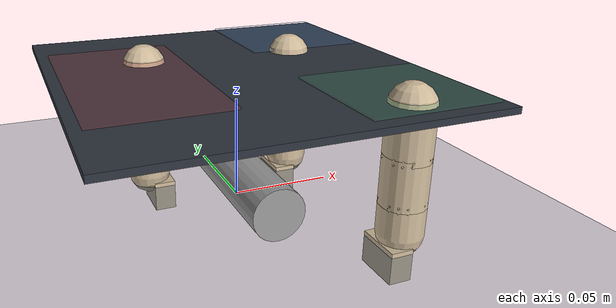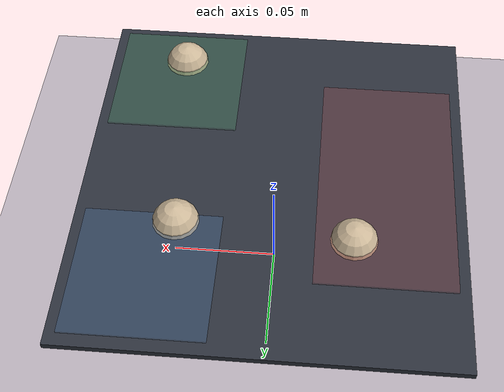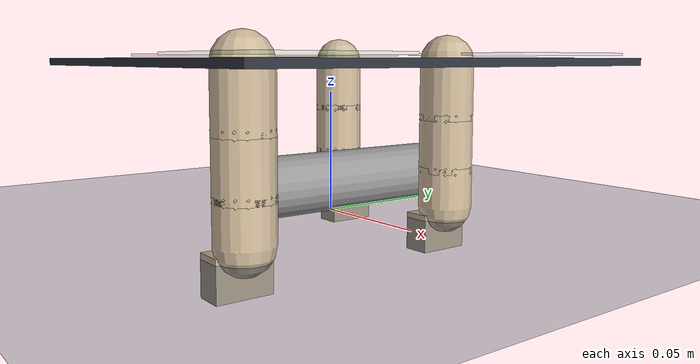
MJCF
<mujoco model="scene_tp0d0133p0d0316p0d0000_in0d0095n0d0280p0d0000_mn0d0017n0d0145p0d0000">
  <compiler angle="radian" autolimits="true" />
  <option timestep="0.002" gravity="0 0 -9.81" integrator="implicitfast" cone="elliptic" impratio="10" />
  <visual>
    <headlight ambient=".4 .4 .4" diffuse=".8 .8 .8" specular="0.1 0.1 0.1" />
    <map znear=".01" />
    <quality shadowsize="2048" />
    <global elevation="-15" />
  </visual>
  <default>
    <geom friction="1.8 0.15 0.01" solref="0.006 1" solimp="0.97 0.995 0.0005" />
    <motor ctrlrange="-1 1" ctrllimited="true" />
    <default class="pose">
      <joint damping="2.0" armature="0.01" />
      <position kp="4000" kv="100" forcerange="-1000 1000" />
    </default>
    <default class="ctrl">
      <joint type="hinge" damping="0.5" armature="0.001" frictionloss="0.0035" />
      <position kp="0.5" kv="0.02" gear="1" forcerange="-0.35 0.35" ctrlrange="-1 1" />
    </default>
  </default>
  <asset>
    <texture type="skybox" builtin="gradient" rgb1="0.3 0.5 0.7" rgb2="0 0 0" width="512" height="3072" />
    <texture type="2d" name="groundplane" builtin="checker" mark="edge" rgb1="0.2 0.3 0.4" rgb2="0.1 0.2 0.3" markrgb="0.8 0.8 0.8" width="300" height="300" />
    <material name="groundplane" texture="groundplane" texuniform="true" texrepeat="5 5" reflectance="0.2" />
    <texture name="grid" type="2d" builtin="checker" rgb1="0.15 0.15 0.15" rgb2="0.25 0.25 0.25" width="256" height="256" />
    <material name="table_mat" texture="grid" texrepeat="3 3" reflectance="0.2" />
    <material name="palm_mat" rgba="0.18 0.2 0.24 1" />
    <material name="finger_mat" rgba="0.8 0.72 0.6 1" />
    <material name="object_mat" rgba="0.6 0.6 0.6 1" />
  </asset>
  <worldbody>
    <light pos="0 0 1.5" dir="0 0 -1" directional="true" diffuse=".6 .6 .6" specular=".2 .2 .2" />
    <light pos="0.5 0.5 1.0" dir="-1 -1 -1" directional="true" diffuse=".4 .4 .4" specular=".1 .1 .1" />
    <geom name="floor" type="plane" size="1.5 1.5 0.1" material="groundplane" />
    <body name="screwdriver_medium" pos="0.0 0.0 0.0125" quat="0.70711 0.70711 0 0">
      <freejoint />
      <geom type="cylinder" size="0.0125 0.05" density="500" material="object_mat" friction="1 0.2 0.02" />
    </body>
    <body gravcomp="1" name="palm_pose" pos="0 0 0.062500">
      <joint class="pose" name="palm_px" type="slide" axis="1 0 0" range="-0.20 0.20" />
      <joint class="pose" name="palm_py" type="slide" axis="0 1 0" range="-0.20 0.20" />
      <joint class="pose" name="palm_pz" type="slide" axis="0 0 1" range="-0.15 0.35" />
      <joint class="pose" name="palm_rx" type="hinge" axis="1 0 0" range="-1.57 1.57" />
      <joint class="pose" name="palm_ry" type="hinge" axis="0 1 0" range="-1.57 1.57" />
      <joint class="pose" name="palm_rz" type="hinge" axis="0 0 1" range="-3.14 3.14" />
      <geom type="box" size="0.0850 0.0900 0.0015" material="palm_mat" pos="0 0 0" />
      <site name="workspace_thumb" type="box" pos="-0.050 0 0.003" size="0.030 0.055 0.0005" rgba="0.85 0.30 0.30 0.14" />
      <site name="workspace_index" type="box" pos="0.050 0.055 0.003" size="0.030 0.030 0.0005" rgba="0.30 0.55 0.85 0.14" />
      <site name="workspace_middle" type="box" pos="0.050 -0.055 0.003" size="0.030 0.030 0.0005" rgba="0.30 0.75 0.45 0.14" />
      <body name="thumb_mount" pos="-0.036677 0.031561 0">
        <inertial pos="0 0 0" mass="0.001" diaginertia="1e-6 1e-6 1e-6" />
        <body name="thumb_yaw_frame">
          <joint class="ctrl" name="thumb_yaw" axis="1 0 0" range="-1.483530 1.483530" />
          <geom type="capsule" fromto="0 0 0 0 0 -0.022900" size="0.010550" material="finger_mat" />
          <body name="thumb_mcp_frame" pos="0 0 -0.020750">
            <joint class="ctrl" name="thumb_mcp" axis="0 -1 0" range="-0.261799 1.605703" />
            <geom type="capsule" fromto="0 0 0 0 0 -0.022900" size="0.010550" material="finger_mat" />
            <body name="thumb_len_frame" pos="0 0 0">
              <inertial pos="0 0 0" mass="0.001" diaginertia="1e-6 1e-6 1e-6" />
              <body name="thumb_pip_frame" pos="0 0 -0.020750">
                <joint class="ctrl" name="thumb_pip" axis="0 -1 0" range="-0.314159 1.605703" />
                <geom type="capsule" fromto="0 0 0 0 0 -0.016060" size="0.010550" material="finger_mat" friction="1 0.2 0.02" />
                <body name="thumb_tip" pos="0 0 -0.026610">
                  <inertial pos="0 0 0" quat="1 0 0 0" mass="0.00491865077" diaginertia="2.18983251e-07 2.18983251e-07 2.18983251e-07" /><geom material="finger_mat" friction="1 0.2 0.02" type="box" size="0.005275 0.010550 0.007500" pos="0.005275 0.000000 0.000000" /></body>
              <inertial pos="0 0 -0.026285" mass="0.019099" diaginertia="0.000002198 0.000002198 0.000000769" /></body>
            </body>
          <inertial pos="0 0 -0.030525" mass="0.020439" diaginertia="0.000003297 0.000003297 0.000001154" /></body>
        <inertial pos="0 0 -0.032061" mass="0.030439" diaginertia="0.000004911 0.000004911 0.000001719" /></body>
      </body>
      <body name="index_mount" pos="0.040461 0.02702 0">
        <inertial pos="0 0 0" mass="0.001" diaginertia="1e-6 1e-6 1e-6" />
        <body name="index_yaw_frame">
          <joint class="ctrl" name="index_yaw" axis="1 0 0" range="-1.483530 1.483530" />
          <geom type="capsule" fromto="0 0 0 0 0 -0.022900" size="0.010550" material="finger_mat" />
          <body name="index_mcp_frame" pos="0 0 -0.020750">
            <joint class="ctrl" name="index_mcp" axis="0 1 0" range="-0.261799 1.605703" />
            <geom type="capsule" fromto="0 0 0 0 0 -0.022900" size="0.010550" material="finger_mat" />
            <body name="index_len_frame" pos="0 0 0">
              <inertial pos="0 0 0" mass="0.001" diaginertia="1e-6 1e-6 1e-6" />
              <body name="index_pip_frame" pos="0 0 -0.020750">
                <joint class="ctrl" name="index_pip" axis="0 1 0" range="-0.314159 1.605703" />
                <geom type="capsule" fromto="0 0 0 0 0 -0.016060" size="0.010550" material="finger_mat" friction="1 0.2 0.02" />
                <body name="index_tip" pos="0 0 -0.026610">
                  <inertial pos="0 0 0" quat="1 0 0 0" mass="0.00491865077" diaginertia="2.18983251e-07 2.18983251e-07 2.18983251e-07" /><geom material="finger_mat" friction="1 0.2 0.02" type="box" size="0.005275 0.010550 0.007500" pos="-0.005275 0.000000 0.000000" /></body>
              <inertial pos="0 0 -0.026285" mass="0.019099" diaginertia="0.000002198 0.000002198 0.000000769" /></body>
            </body>
          <inertial pos="0 0 -0.030525" mass="0.020439" diaginertia="0.000003297 0.000003297 0.000001154" /></body>
        <inertial pos="0 0 -0.032061" mass="0.030439" diaginertia="0.000004911 0.000004911 0.000001719" /></body>
      </body>
      <body name="middle_mount" pos="0.048335 -0.069487 0">
        <inertial pos="0 0 0" mass="0.001" diaginertia="1e-6 1e-6 1e-6" />
        <body name="middle_yaw_frame">
          <joint class="ctrl" name="middle_yaw" axis="1 0 0" range="-1.483530 1.483530" />
          <geom type="capsule" fromto="0 0 0 0 0 -0.022900" size="0.010550" material="finger_mat" />
          <body name="middle_mcp_frame" pos="0 0 -0.020750">
            <joint class="ctrl" name="middle_mcp" axis="0 1 0" range="-0.261799 1.605703" />
            <geom type="capsule" fromto="0 0 0 0 0 -0.022900" size="0.010550" material="finger_mat" />
            <body name="middle_len_frame" pos="0 0 0">
              <inertial pos="0 0 0" mass="0.001" diaginertia="1e-6 1e-6 1e-6" />
              <body name="middle_pip_frame" pos="0 0 -0.020750">
                <joint class="ctrl" name="middle_pip" axis="0 1 0" range="-0.314159 1.605703" />
                <geom type="capsule" fromto="0 0 0 0 0 -0.016060" size="0.010550" material="finger_mat" friction="1 0.2 0.02" />
                <body name="middle_tip" pos="0 0 -0.026610">
                  <inertial pos="0 0 0" quat="1 0 0 0" mass="0.00491865077" diaginertia="2.18983251e-07 2.18983251e-07 2.18983251e-07" /><geom material="finger_mat" friction="1 0.2 0.02" type="box" size="0.005275 0.010550 0.007500" pos="-0.005275 0.000000 0.000000" /></body>
              <inertial pos="0 0 -0.026285" mass="0.019099" diaginertia="0.000002198 0.000002198 0.000000769" /></body>
            </body>
          <inertial pos="0 0 -0.030525" mass="0.020439" diaginertia="0.000003297 0.000003297 0.000001154" /></body>
        <inertial pos="0 0 -0.032061" mass="0.030439" diaginertia="0.000004911 0.000004911 0.000001719" /></body>
      </body>
    </body>
  </worldbody>
  <contact>
    <exclude body1="palm_pose" body2="thumb_yaw_frame" />
    <exclude body1="palm_pose" body2="thumb_mcp_frame" />
    <exclude body1="palm_pose" body2="thumb_len_frame" />
    <exclude body1="palm_pose" body2="thumb_pip_frame" />
    <exclude body1="palm_pose" body2="thumb_tip" />
    <exclude body1="thumb_yaw_frame" body2="thumb_pip_frame" />
    <exclude body1="thumb_mcp_frame" body2="thumb_pip_frame" />
    <exclude body1="palm_pose" body2="index_yaw_frame" />
    <exclude body1="palm_pose" body2="index_mcp_frame" />
    <exclude body1="palm_pose" body2="index_len_frame" />
    <exclude body1="palm_pose" body2="index_pip_frame" />
    <exclude body1="palm_pose" body2="index_tip" />
    <exclude body1="index_yaw_frame" body2="index_pip_frame" />
    <exclude body1="index_mcp_frame" body2="index_pip_frame" />
    <exclude body1="palm_pose" body2="middle_yaw_frame" />
    <exclude body1="palm_pose" body2="middle_mcp_frame" />
    <exclude body1="palm_pose" body2="middle_len_frame" />
    <exclude body1="palm_pose" body2="middle_pip_frame" />
    <exclude body1="palm_pose" body2="middle_tip" />
    <exclude body1="middle_yaw_frame" body2="middle_pip_frame" />
    <exclude body1="middle_mcp_frame" body2="middle_pip_frame" />
  </contact>
  <actuator>
    <position class="pose" name="a_palm_px" joint="palm_px" ctrlrange="-0.20 0.20" />
    <position class="pose" name="a_palm_py" joint="palm_py" ctrlrange="-0.20 0.20" />
    <position class="pose" name="a_palm_pz" joint="palm_pz" ctrlrange="-0.15 0.35" />
    <position class="pose" name="a_palm_rx" joint="palm_rx" ctrlrange="-1.57 1.57" />
    <position class="pose" name="a_palm_ry" joint="palm_ry" ctrlrange="-1.57 1.57" />
    <position class="pose" name="a_palm_rz" joint="palm_rz" ctrlrange="-3.14 3.14" />
    <position class="ctrl" name="a_thumb_yaw" joint="thumb_yaw" ctrlrange="-1.483530 1.483530" />
    <position class="ctrl" name="a_thumb_mcp" joint="thumb_mcp" ctrlrange="-0.261799 1.605703" />
    <position class="ctrl" name="a_thumb_pip" joint="thumb_pip" ctrlrange="-0.314159 1.605703" />
    <position class="ctrl" name="a_index_yaw" joint="index_yaw" ctrlrange="-1.483530 1.483530" />
    <position class="ctrl" name="a_index_mcp" joint="index_mcp" ctrlrange="-0.261799 1.605703" />
    <position class="ctrl" name="a_index_pip" joint="index_pip" ctrlrange="-0.314159 1.605703" />
    <position class="ctrl" name="a_middle_yaw" joint="middle_yaw" ctrlrange="-1.483530 1.483530" />
    <position class="ctrl" name="a_middle_mcp" joint="middle_mcp" ctrlrange="-0.261799 1.605703" />
    <position class="ctrl" name="a_middle_pip" joint="middle_pip" ctrlrange="-0.314159 1.605703" />
  </actuator>
  <keyframe><key name="open_ik" qpos="0 0 0.0125 0.707106781 0.707106781 0 0 -0.0038605 0.00363533333 0.0125 0 0 0 -0.238277315 0.159127732 0.362613835 0.147971118 -0.131592788 0.742787851 0.392198031 0.410820293 2.71834591e-05" ctrl="-0.0038605 0.00363533333 0.0125 0 0 0 -0.238513103 0.546196027 4.31731304e-05 0.14841526 0.465284529 0.0409645947 0.392198031 0.575609193 9.45647063e-11" /><key name="open" qpos="0 0 0.0125 0.707106781 0.707106781 0 0 -0.0038605 0.00363533333 0.0125 0 0 0 -0.238277315 0.159127732 0.362613835 0.147971118 -0.131592788 0.742787851 0.392198031 0.410820293 2.71834591e-05" /></keyframe></mujoco>
